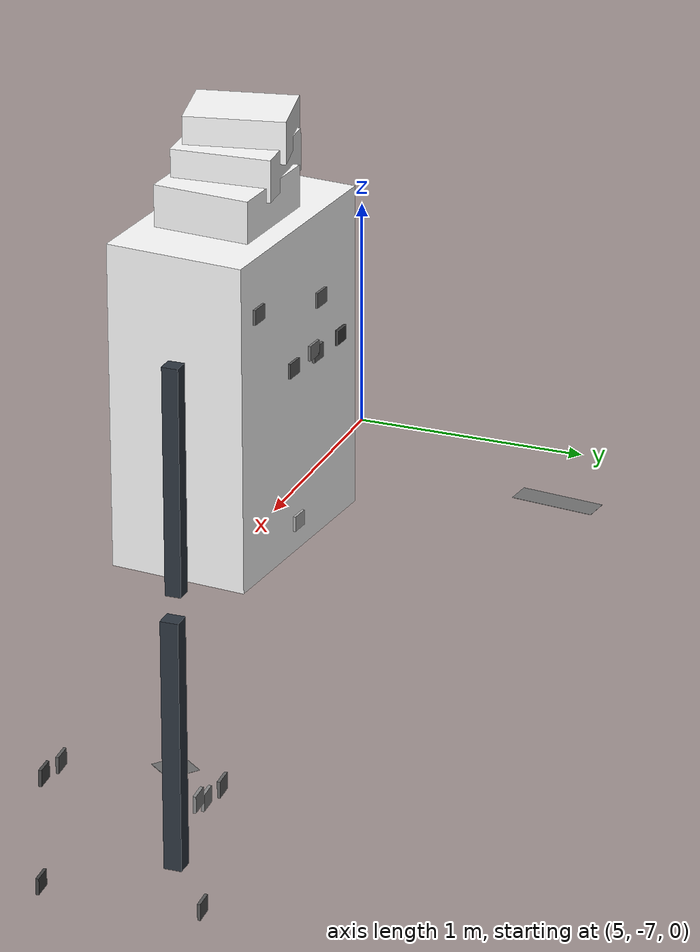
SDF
<sdf version="1.9">
 <world name="warehouse_irregular">
  <model name="concrete_patch_24">
   <static>true</static>
   <pose>8.253948915280617 -6.4821725666336345 0.0006 0 0 0.9015008740180281</pose>
   <link name="body">
    <visual name="surface">
     <geometry><box><size>0.13493146654354335 0.1348032268012523 0.001</size></box></geometry>
     <material>
      <ambient>0.4351740518051935 0.4351740518051935 0.4351740518051935 1</ambient>
      <diffuse>0.4351740518051935 0.4351740518051935 0.4351740518051935 1</diffuse>
     </material>
    </visual>
   </link>
  </model>
  <model name="concrete_patch_156">
   <static>true</static>
   <pose>5.480102650507877 -5.939300022654356 0.0006 0 0 -1.6888584331309051</pose>
   <link name="body">
    <visual name="surface">
     <geometry><box><size>0.3638853470259859 0.11114808084689995 0.001</size></box></geometry>
     <material>
      <ambient>0.45028456674494705 0.45028456674494705 0.45028456674494705 1</ambient>
      <diffuse>0.45028456674494705 0.45028456674494705 0.45028456674494705 1</diffuse>
     </material>
    </visual>
   </link>
  </model>
  <model name="cabinet_34">
   <static>true</static>
   <pose>6.2506992946663384 -7.069068325554149 0.7039982406827061 0 0 -0.09098603124028803</pose>
   <link name="body">
    <visual name="surface">
     <geometry><box><size>1 0.6 1.4079964813654122</size></box></geometry>
     <material>
      <ambient>1 1 1 1</ambient>
      <diffuse>1 1 1 1</diffuse>
      <pbr>
       <metal>
        <albedo_map>model://feature_warehouse_materials/textures/storage_34.png</albedo_map>
        <roughness>.9</roughness>
        <metalness>0</metalness>
       </metal>
      </pbr>
     </material>
    </visual>
    <collision name="solid"><geometry><box><size>1 0.6 1.4079964813654122</size></box></geometry></collision>
   </link>
  </model>
  <model name="panel_34_0_1">
   <static>true</static>
   <pose>6.098396873131045 -6.748905732109574 1.036896282871665 0 0 -0.09098603124028803</pose>
   <link name="body">
    <visual name="surface">
     <geometry><box><size>0.08 0.012 0.065</size></box></geometry>
     <material>
      <ambient>0.39530217895437786 0.39530217895437786 0.39530217895437786 1</ambient>
      <diffuse>0.39530217895437786 0.39530217895437786 0.39530217895437786 1</diffuse>
     </material>
    </visual>
   </link>
  </model>
  <model name="panel_34_1_1">
   <static>true</static>
   <pose>6.301530895430456 -6.767439261871605 0.12822751072964342 0 0 -0.09098603124028803</pose>
   <link name="body">
    <visual name="surface">
     <geometry><box><size>0.08 0.012 0.065</size></box></geometry>
     <material>
      <ambient>0.6865794134337044 0.6865794134337044 0.6865794134337044 1</ambient>
      <diffuse>0.6865794134337044 0.6865794134337044 0.6865794134337044 1</diffuse>
     </material>
    </visual>
   </link>
  </model>
  <model name="panel_34_2_1">
   <static>true</static>
   <pose>6.3401473722829556 -6.770962549674156 0.8192553754980143 0 0 -0.09098603124028803</pose>
   <link name="body">
    <visual name="surface">
     <geometry><box><size>0.08 0.012 0.065</size></box></geometry>
     <material>
      <ambient>0.35403571470634554 0.35403571470634554 0.35403571470634554 1</ambient>
      <diffuse>0.35403571470634554 0.35403571470634554 0.35403571470634554 1</diffuse>
     </material>
    </visual>
   </link>
  </model>
  <model name="panel_34_3_1">
   <static>true</static>
   <pose>6.635755169410525 -6.797933196166238 1.1663526635982497 0 0 -0.09098603124028803</pose>
   <link name="body">
    <visual name="surface">
     <geometry><box><size>0.08 0.012 0.065</size></box></geometry>
     <material>
      <ambient>0.3979819525295333 0.3979819525295333 0.3979819525295333 1</ambient>
      <diffuse>0.3979819525295333 0.3979819525295333 0.3979819525295333 1</diffuse>
     </material>
    </visual>
   </link>
  </model>
  <model name="panel_34_4_1">
   <static>true</static>
   <pose>6.16299195892531 -6.754799254679044 0.8297124892541888 0 0 -0.09098603124028803</pose>
   <link name="body">
    <visual name="surface">
     <geometry><box><size>0.08 0.012 0.065</size></box></geometry>
     <material>
      <ambient>0.4801629638087038 0.4801629638087038 0.4801629638087038 1</ambient>
      <diffuse>0.4801629638087038 0.4801629638087038 0.4801629638087038 1</diffuse>
     </material>
    </visual>
   </link>
  </model>
  <model name="panel_34_5_1">
   <static>true</static>
   <pose>5.9240162581231655 -6.732995604000132 0.8060264750223579 0 0 -0.09098603124028803</pose>
   <link name="body">
    <visual name="surface">
     <geometry><box><size>0.08 0.012 0.065</size></box></geometry>
     <material>
      <ambient>0.2106127497127065 0.2106127497127065 0.2106127497127065 1</ambient>
      <diffuse>0.2106127497127065 0.2106127497127065 0.2106127497127065 1</diffuse>
     </material>
    </visual>
   </link>
  </model>
  <model name="panel_34_6_1">
   <static>true</static>
   <pose>6.126834937961208 -6.751500362565557 0.8069827269555633 0 0 -0.09098603124028803</pose>
   <link name="body">
    <visual name="surface">
     <geometry><box><size>0.08 0.012 0.065</size></box></geometry>
     <material>
      <ambient>0.38533535678870023 0.38533535678870023 0.38533535678870023 1</ambient>
      <diffuse>0.38533535678870023 0.38533535678870023 0.38533535678870023 1</diffuse>
     </material>
    </visual>
   </link>
  </model>
  <model name="carton_34_0">
   <static>true</static>
   <pose>6.303607563278341 -7.069068325554149 1.5079964813654123 0 0 -0.09098603124028803</pose>
   <link name="body">
    <visual name="surface">
     <geometry><box><size>0.45 0.42 0.18</size></box></geometry>
     <material>
      <ambient>1 1 1 1</ambient>
      <diffuse>1 1 1 1</diffuse>
      <pbr>
       <metal>
        <albedo_map>model://feature_warehouse_materials/textures/storage_34.png</albedo_map>
        <roughness>.9</roughness>
        <metalness>0</metalness>
       </metal>
      </pbr>
     </material>
    </visual>
    <collision name="solid"><geometry><box><size>0.45 0.42 0.18</size></box></geometry></collision>
   </link>
  </model>
  <model name="carton_34_1">
   <static>true</static>
   <pose>6.207881027716724 -7.069068325554149 1.6279964813654124 0 0 0.05901396875971196</pose>
   <link name="body">
    <visual name="surface">
     <geometry><box><size>0.38 0.42 0.18</size></box></geometry>
     <material>
      <ambient>1 1 1 1</ambient>
      <diffuse>1 1 1 1</diffuse>
      <pbr>
       <metal>
        <albedo_map>model://feature_warehouse_materials/textures/storage_34.png</albedo_map>
        <roughness>.9</roughness>
        <metalness>0</metalness>
       </metal>
      </pbr>
     </material>
    </visual>
    <collision name="solid"><geometry><box><size>0.38 0.42 0.18</size></box></geometry></collision>
   </link>
  </model>
  <model name="carton_34_2">
   <static>true</static>
   <pose>6.151521409322027 -7.069068325554149 1.7479964813654123 0 0 0.20901396875971195</pose>
   <link name="body">
    <visual name="surface">
     <geometry><box><size>0.31 0.42 0.18</size></box></geometry>
     <material>
      <ambient>1 1 1 1</ambient>
      <diffuse>1 1 1 1</diffuse>
      <pbr>
       <metal>
        <albedo_map>model://feature_warehouse_materials/textures/storage_34.png</albedo_map>
        <roughness>.9</roughness>
        <metalness>0</metalness>
       </metal>
      </pbr>
     </material>
    </visual>
    <collision name="solid"><geometry><box><size>0.31 0.42 0.18</size></box></geometry></collision>
   </link>
  </model>
  <model name="post_34_1">
   <static>true</static>
   <pose>6.8706992946663386 -7.069068325554149 0.5 0 0 0</pose>
   <link name="body">
    <visual name="surface">
     <geometry><box><size>0.07 0.07 1</size></box></geometry>
     <material><ambient>0.18 0.21 0.25 1</ambient><diffuse>0.18 0.21 0.25 1</diffuse></material>
    </visual>
    <collision name="solid"><geometry><box><size>0.07 0.07 1</size></box></geometry></collision>
   </link>
  </model>
  <model name="panel_36_2_-1">
   <static>true</static>
   <pose>9.227633813848716 -6.503802965498947 0.49746184429636475 0 0 0.06244745621822345</pose>
   <link name="body">
    <visual name="surface">
     <geometry><box><size>0.08 0.012 0.065</size></box></geometry>
     <material>
      <ambient>0.3681354055619307 0.3681354055619307 0.3681354055619307 1</ambient>
      <diffuse>0.3681354055619307 0.3681354055619307 0.3681354055619307 1</diffuse>
     </material>
    </visual>
   </link>
  </model>
  <model name="panel_36_2_1">
   <static>true</static>
   <pose>9.189565619143712 -5.894991982884554 0.49746184429636475 0 0 0.06244745621822345</pose>
   <link name="body">
    <visual name="surface">
     <geometry><box><size>0.08 0.012 0.065</size></box></geometry>
     <material>
      <ambient>0.4086129815063033 0.4086129815063033 0.4086129815063033 1</ambient>
      <diffuse>0.4086129815063033 0.4086129815063033 0.4086129815063033 1</diffuse>
     </material>
    </visual>
   </link>
  </model>
  <model name="panel_36_4_-1">
   <static>true</static>
   <pose>9.452897534705624 -6.48971750477232 0.12217549987387406 0 0 0.06244745621822345</pose>
   <link name="body">
    <visual name="surface">
     <geometry><box><size>0.08 0.012 0.065</size></box></geometry>
     <material>
      <ambient>0.26454412118168863 0.26454412118168863 0.26454412118168863 1</ambient>
      <diffuse>0.26454412118168863 0.26454412118168863 0.26454412118168863 1</diffuse>
     </material>
    </visual>
   </link>
  </model>
  <model name="panel_36_4_1">
   <static>true</static>
   <pose>9.41482934000062 -5.880906522157927 0.12217549987387406 0 0 0.06244745621822345</pose>
   <link name="body">
    <visual name="surface">
     <geometry><box><size>0.08 0.012 0.065</size></box></geometry>
     <material>
      <ambient>0.3467260850965206 0.3467260850965206 0.3467260850965206 1</ambient>
      <diffuse>0.3467260850965206 0.3467260850965206 0.3467260850965206 1</diffuse>
     </material>
    </visual>
   </link>
  </model>
  <model name="panel_36_5_1">
   <static>true</static>
   <pose>9.445499748867924 -5.878988739578794 0.5673120055167411 0 0 0.06244745621822345</pose>
   <link name="body">
    <visual name="surface">
     <geometry><box><size>0.08 0.012 0.065</size></box></geometry>
     <material>
      <ambient>0.538208057789959 0.538208057789959 0.538208057789959 1</ambient>
      <diffuse>0.538208057789959 0.538208057789959 0.538208057789959 1</diffuse>
     </material>
    </visual>
   </link>
  </model>
  <model name="panel_36_6_-1">
   <static>true</static>
   <pose>9.397575148285345 -6.493176744894351 0.5297699980031312 0 0 0.06244745621822345</pose>
   <link name="body">
    <visual name="surface">
     <geometry><box><size>0.08 0.012 0.065</size></box></geometry>
     <material>
      <ambient>0.2884622026620448 0.2884622026620448 0.2884622026620448 1</ambient>
      <diffuse>0.2884622026620448 0.2884622026620448 0.2884622026620448 1</diffuse>
     </material>
    </visual>
   </link>
  </model>
  <model name="panel_36_6_1">
   <static>true</static>
   <pose>9.359506953580341 -5.884365762279958 0.5297699980031312 0 0 0.06244745621822345</pose>
   <link name="body">
    <visual name="surface">
     <geometry><box><size>0.08 0.012 0.065</size></box></geometry>
     <material>
      <ambient>0.5513501797795909 0.5513501797795909 0.5513501797795909 1</ambient>
      <diffuse>0.5513501797795909 0.5513501797795909 0.5513501797795909 1</diffuse>
     </material>
    </visual>
   </link>
  </model>
  <model name="post_36_-1">
   <static>true</static>
   <pose>8.963746471902294 -6.175940013443553 0.5 0 0 0</pose>
   <link name="body">
    <visual name="surface">
     <geometry><box><size>0.07 0.07 1</size></box></geometry>
     <material><ambient>0.18 0.21 0.25 1</ambient><diffuse>0.18 0.21 0.25 1</diffuse></material>
    </visual>
    <collision name="solid"><geometry><box><size>0.07 0.07 1</size></box></geometry></collision>
   </link>
  </model>
 </world>
</sdf>
